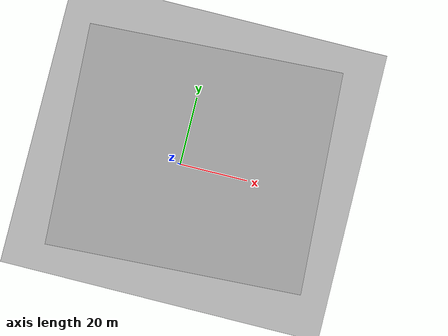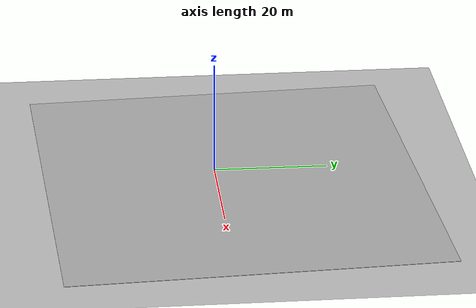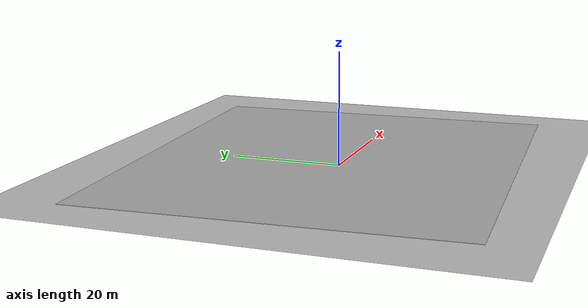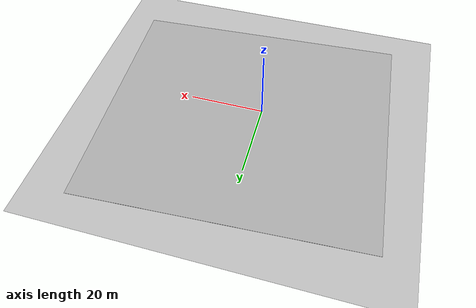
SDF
<sdf version="1.6">
 <world name="default">
  <light name="sun" type="directional">
   <pose>0 0 10 0 -0 0</pose>
   <diffuse>0.8 0.8 0.8 1</diffuse>
   <specular>0.2 0.2 0.2 1</specular>
   <attenuation>
    <range>1000</range>
    <constant>0.9</constant>
    <linear>0.01</linear>
    <quadratic>0.001</quadratic>
   </attenuation>
   <direction>-0.5 0.1 -0.9</direction>
  </light>
  <model name="ground_plane">
   <static>1</static>
   <link name="link">
    <collision name="collision">
     <geometry><plane><normal>0 0 1</normal><size>100 100</size></plane></geometry>
     <surface><friction><ode><mu>100</mu><mu2>50</mu2></ode></friction></surface>
    </collision>
    <visual name="visual">
     <cast_shadows>0</cast_shadows>
     <geometry><plane><normal>0 0 1</normal><size>100 100</size></plane></geometry>
     <material>
      <script><uri>file://media/materials/scripts/gazebo.material</uri><name>Gazebo/Grey</name></script>
     </material>
    </visual>
   </link>
  </model>
  <gravity>0 0 -9.8</gravity>
  <magnetic_field>6e-06 2.3e-05 -4.2e-05</magnetic_field>
  <atmosphere type="adiabatic"/>
  <physics name="default_physics" default="0" type="ode">
   <max_step_size>0.001</max_step_size>
   <real_time_factor>1</real_time_factor>
   <real_time_update_rate>1000</real_time_update_rate>
  </physics>
  <scene><ambient>0.4 0.4 0.4 1</ambient><background>0.7 0.7 0.7 1</background><shadows>1</shadows></scene>
  <spherical_coordinates>
   <surface_model>EARTH_WGS84</surface_model>
   <latitude_deg>0</latitude_deg>
   <longitude_deg>0</longitude_deg>
   <elevation>0</elevation>
   <heading_deg>0</heading_deg>
  </spherical_coordinates>
  <model name="tracks_textures">
   <static>1</static>
   <link name="tracks">
    <pose>-1.54 -2 0.025 0 -0 0</pose>
    <collision name="collision">
     <geometry><plane><normal>0 0 1</normal><size>5.076 5.893</size></plane></geometry>
     <surface><friction><ode><mu>100</mu><mu2>50</mu2></ode></friction></surface>
    </collision>
    <visual name="visual">
     <cast_shadows>0</cast_shadows>
     <geometry><plane><normal>0 0 1</normal><size>75.76 65.93</size></plane></geometry>
     <material>
      <script>
       <uri>model://tracks_textures/materials/scripts</uri>
       <uri>model://tracks_textures/materials/textures</uri>
       <name>tracks_textures/track_image</name>
      </script>
     </material>
    </visual>
   </link>
   <pose>5.076 4.8 0 0 -0 0.05</pose>
  </model>
 </world>
</sdf>
